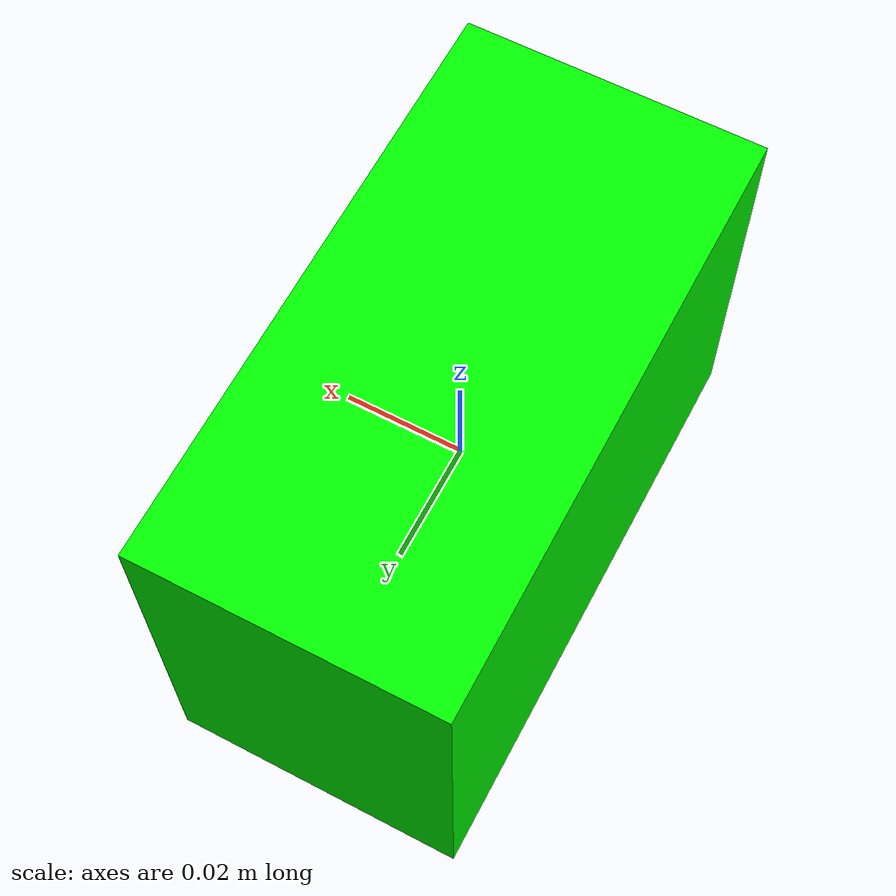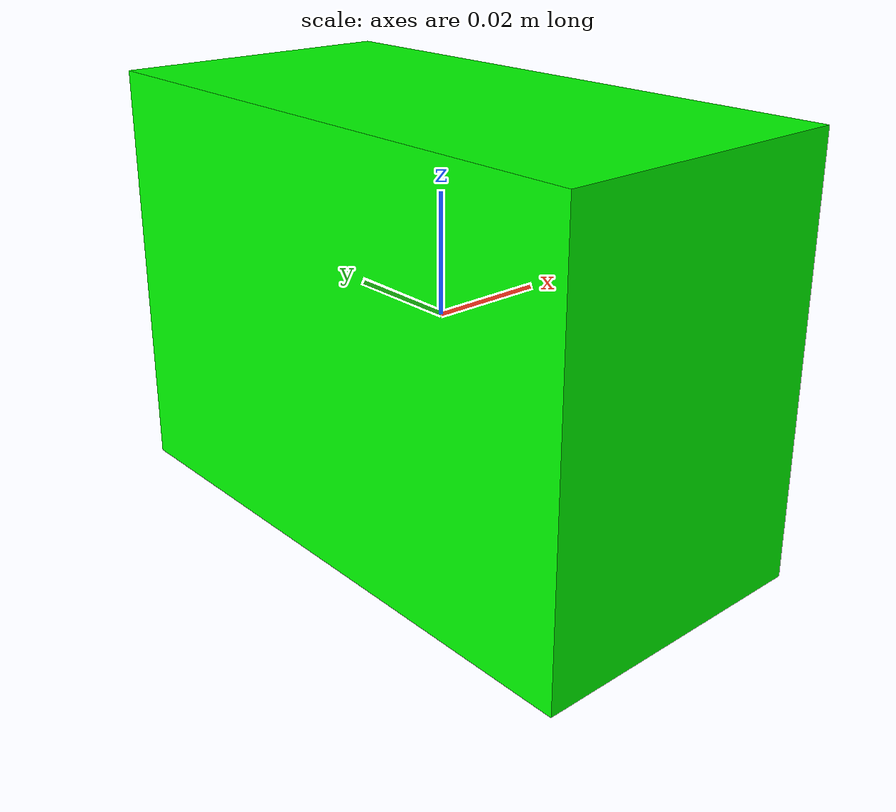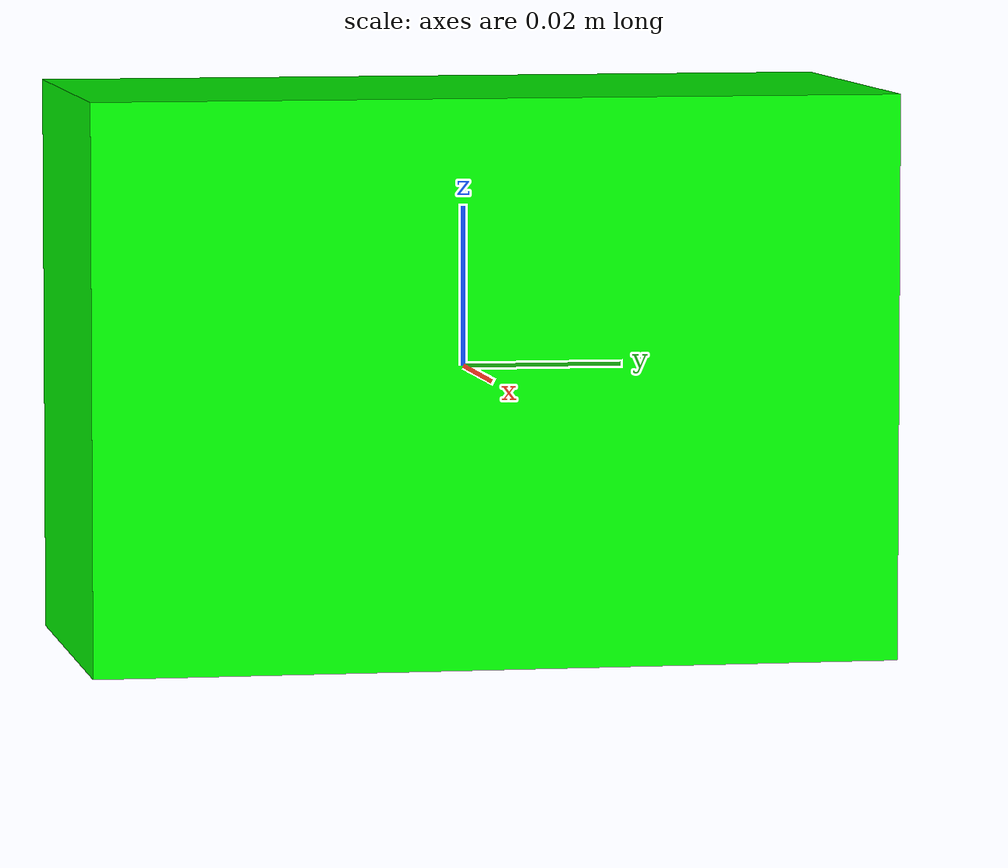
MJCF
<mujoco>
  <worldbody>
    <body name="object">
      <geom name="cube" type="box" size="0.025 0.05 0.035" rgba="0 1 0 1" density="1e3"
        friction="2 0.005 0.0001" />
    </body>
  </worldbody>
</mujoco>
